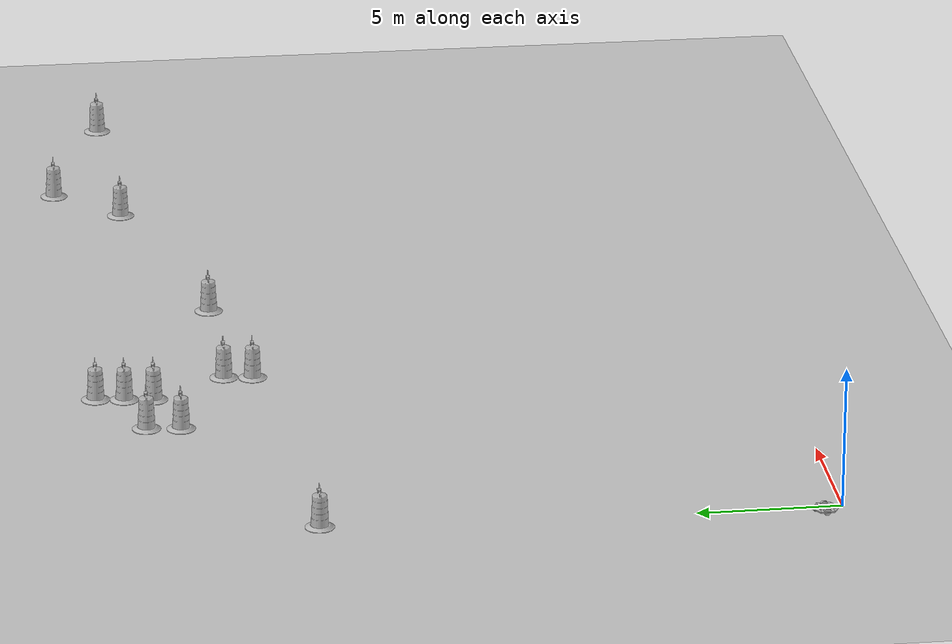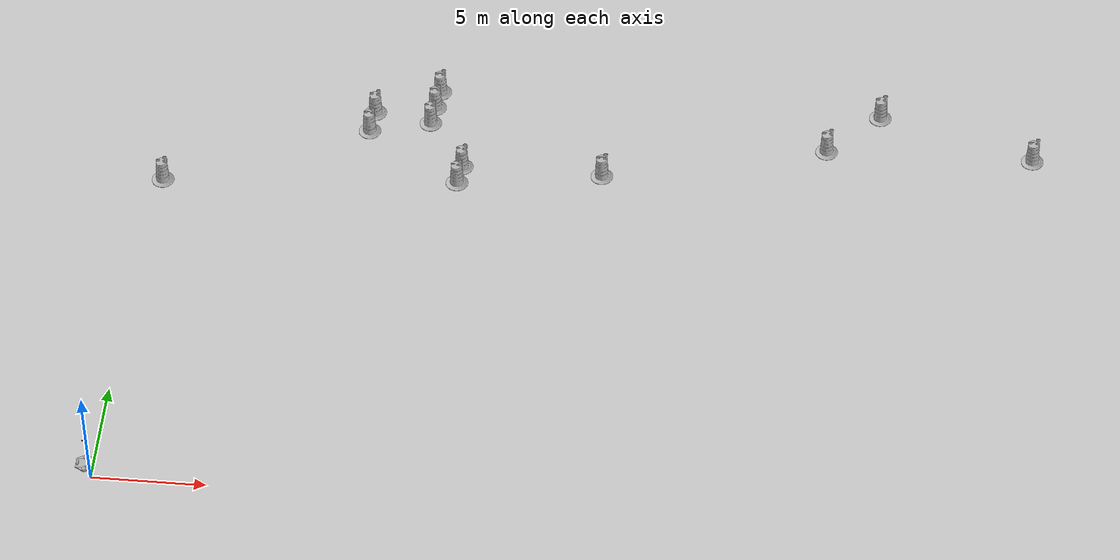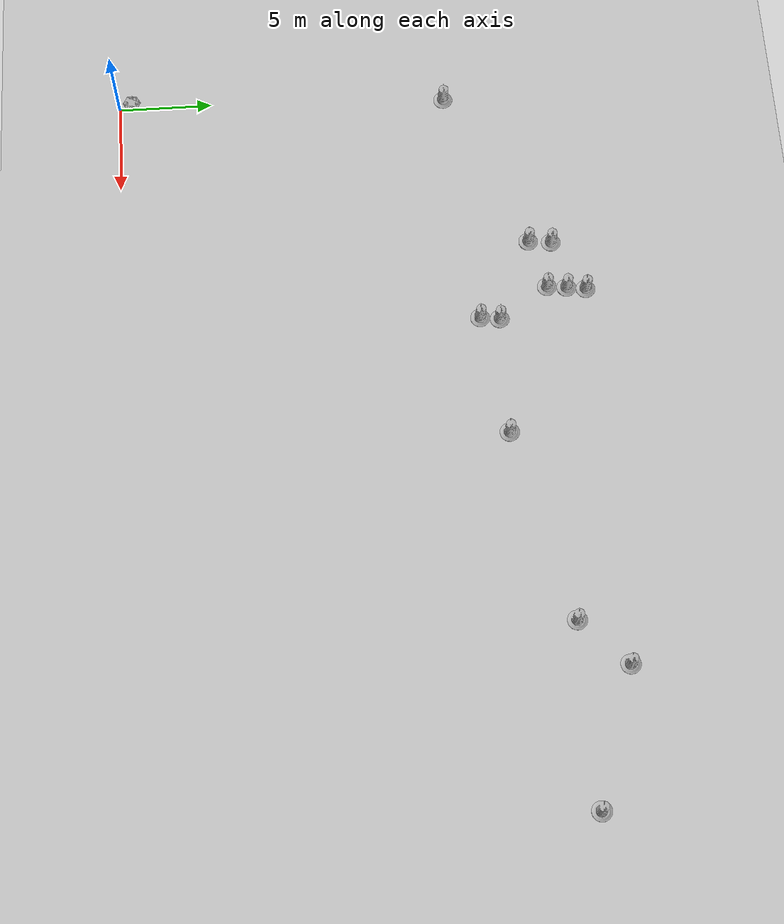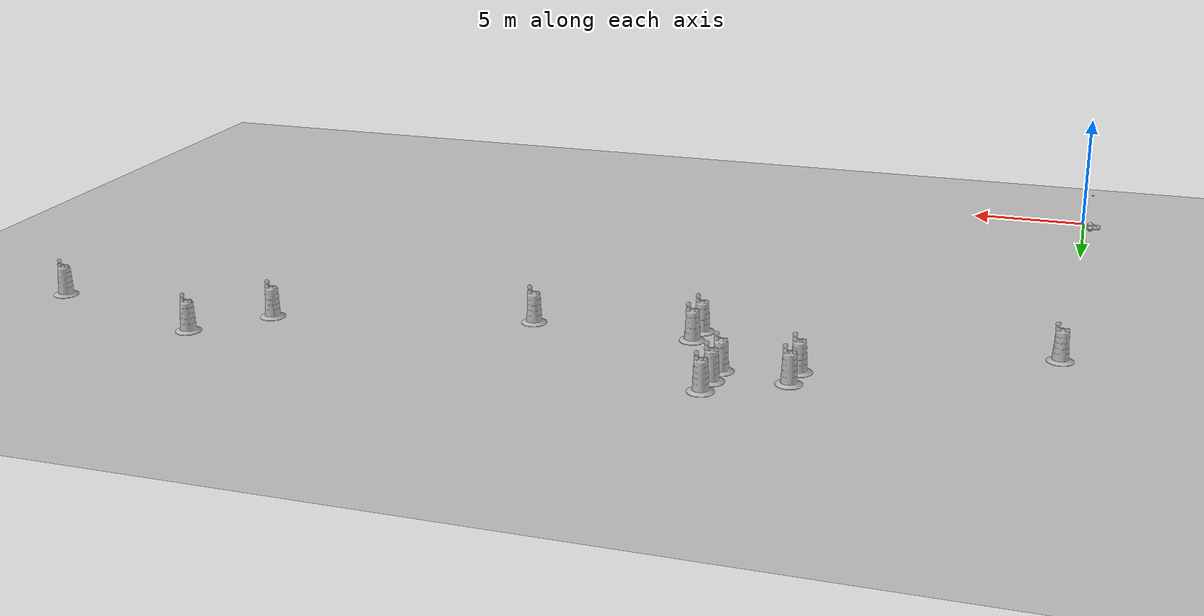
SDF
<sdf version="1.7">
 <world name="default">
  <light name="sun" type="directional">
   <pose>0 0 10 0 -0 0</pose>
   <diffuse>0.8 0.8 0.8 1</diffuse>
   <specular>0.2 0.2 0.2 1</specular>
   <attenuation>
    <range>1000</range>
    <constant>0.9</constant>
    <linear>0.01</linear>
    <quadratic>0.001</quadratic>
   </attenuation>
   <direction>-0.5 0.1 -0.9</direction>
   <spot><inner_angle>0</inner_angle><outer_angle>0</outer_angle><falloff>0</falloff></spot>
  </light>
  <gravity>0 0 -9.8</gravity>
  <magnetic_field>6e-06 2.3e-05 -4.2e-05</magnetic_field>
  <atmosphere type="adiabatic"/>
  <physics type="ode">
   <max_step_size>0.001</max_step_size>
   <real_time_factor>1</real_time_factor>
   <real_time_update_rate>1000</real_time_update_rate>
  </physics>
  <scene><ambient>0.4 0.4 0.4 1</ambient><background>0.7 0.7 0.7 1</background><shadows>1</shadows></scene>
  <spherical_coordinates>
   <surface_model>EARTH_WGS84</surface_model>
   <latitude_deg>0</latitude_deg>
   <longitude_deg>0</longitude_deg>
   <elevation>0</elevation>
   <heading_deg>0</heading_deg>
  </spherical_coordinates>
  <model name="robot">
   <link name="base_link">
    <inertial>
     <pose>0 0 0.071429 0 -0 0</pose>
     <mass>7</mass>
     <inertia><ixx>2.05383</ixx><ixy>0</ixy><ixz>0</ixz><iyy>2.32211</iyy><iyz>0</iyz><izz>2.30782</izz></inertia>
    </inertial>
    <collision name="base_link_fixed_joint_lump__collision_chassis_collision">
     <geometry><box><size>0.4878 0.8382 0.0381</size></box></geometry>
    </collision>
    <collision name="base_link_fixed_joint_lump__link_rotate1_collision_1">
     <geometry><box><size>0.4878 0.8382 0.0381</size></box></geometry>
    </collision>
    <collision name="base_link_fixed_joint_lump__link_rotate2_collision_2">
     <geometry><box><size>0.4878 0.8382 0.0381</size></box></geometry>
    </collision>
    <collision name="base_link_fixed_joint_lump__c_back_collision_3">
     <pose>-0.3175 0 0 1.5708 -0 0</pose>
     <geometry><sphere><radius>0.1263</radius></sphere></geometry>
    </collision>
    <collision name="base_link_fixed_joint_lump__c_front_collision_4">
     <pose>0.3175 0 0 1.5708 -0 0</pose>
     <geometry><sphere><radius>0.1263</radius></sphere></geometry>
    </collision>
    <visual name="base_link_visual"><geometry><box><size>0.4878 0.8382 0.0381</size></box></geometry></visual>
    <visual name="base_link_fixed_joint_lump__link_rotate1_visual_1">
     <pose>0 0 0 0 -0 2.094</pose>
     <geometry><box><size>0.4878 0.8382 0.0381</size></box></geometry>
    </visual>
    <visual name="base_link_fixed_joint_lump__link_rotate2_visual_2">
     <pose>0 0 0 0 0 -2.094</pose>
     <geometry><box><size>0.4878 0.8382 0.0381</size></box></geometry>
    </visual>
    <visual name="base_link_fixed_joint_lump__camera_link_visual_3">
     <pose>0 0 1.5 0 0.55 0</pose>
     <geometry><box><size>0.01 0.1 0.035</size></box></geometry>
     <material>
      <script><name>Gazebo/Red</name><uri>file://media/materials/scripts/gazebo.material</uri></script>
     </material>
    </visual>
    <visual name="base_link_fixed_joint_lump__c_back_visual_4">
     <pose>-0.3175 0 0 1.5708 -0 0</pose>
     <geometry><sphere><radius>0.1263</radius></sphere></geometry>
    </visual>
    <visual name="base_link_fixed_joint_lump__c_front_visual_5">
     <pose>0.3175 0 0 1.5708 -0 0</pose>
     <geometry><sphere><radius>0.1263</radius></sphere></geometry>
    </visual>
    <sensor name="camera" type="depth">
     <visualize>1</visualize>
     <update_rate>10</update_rate>
     <camera>
      <horizontal_fov>2</horizontal_fov>
      <image><format>A8R8G8B8</format><width>1920</width><height>1080</height></image>
      <clip><near>0.05</near><far>8</far></clip>
     </camera>
     <plugin name="camera_controller" filename="libgazebo_ros_camera.so">
      <frame_name>camera_link_optical</frame_name>
      <robotNamespace>/</robotNamespace>
     </plugin>
     <pose>0 0 1.5 0 0.55 0</pose>
    </sensor>
   </link>
   <joint name="joint_left_wheel" type="revolute">
    <pose relative_to="base_link">0 -0.3175 0 0 -0 0</pose>
    <parent>base_link</parent>
    <child>link_left_wheel</child>
    <axis>
     <xyz>0 1 0</xyz>
     <limit><effort>10000</effort><velocity>1000</velocity><lower>-1e+16</lower><upper>1e+16</upper></limit>
     <dynamics><spring_reference>0</spring_reference><spring_stiffness>0</spring_stiffness></dynamics>
    </axis>
   </joint>
   <link name="link_left_wheel">
    <pose relative_to="joint_left_wheel">0 0 0 0 -0 0</pose>
    <inertial>
     <pose>0 0 0 -0 1.5707 1.5707</pose>
     <mass>0.2</mass>
     <inertia>
      <ixx>0.000526667</ixx>
      <ixy>0</ixy>
      <ixz>0</ixz>
      <iyy>0.000526667</iyy>
      <iyz>0</iyz>
      <izz>0.001</izz>
     </inertia>
    </inertial>
    <collision name="link_left_wheel_collision_collision">
     <pose>0 0 0 1.57089 1.57079 -3.14159</pose>
     <geometry><cylinder><length>0.0889</length><radius>0.127</radius></cylinder></geometry>
    </collision>
    <visual name="link_left_wheel_visual_visual">
     <pose>0 0.02 0 1.57089 1.57079 -3.14159</pose>
     <geometry><cylinder><length>0.0889</length><radius>0.127</radius></cylinder></geometry>
    </visual>
   </link>
   <joint name="joint_right_wheel" type="revolute">
    <pose relative_to="base_link">0 0.3175 0 0 -0 0</pose>
    <parent>base_link</parent>
    <child>link_right_wheel</child>
    <axis>
     <xyz>0 1 0</xyz>
     <limit><effort>10000</effort><velocity>1000</velocity><lower>-1e+16</lower><upper>1e+16</upper></limit>
     <dynamics><spring_reference>0</spring_reference><spring_stiffness>0</spring_stiffness></dynamics>
    </axis>
   </joint>
   <link name="link_right_wheel">
    <pose relative_to="joint_right_wheel">0 0 0 0 -0 0</pose>
    <inertial>
     <pose>0 0 0 -0 1.5707 1.5707</pose>
     <mass>0.2</mass>
     <inertia>
      <ixx>0.000526667</ixx>
      <ixy>0</ixy>
      <ixz>0</ixz>
      <iyy>0.000526667</iyy>
      <iyz>0</iyz>
      <izz>0.001</izz>
     </inertia>
    </inertial>
    <collision name="link_right_wheel_collision_collision">
     <pose>0 0 0 1.57089 1.57079 -3.14159</pose>
     <geometry><cylinder><length>0.0889</length><radius>0.127</radius></cylinder></geometry>
    </collision>
    <visual name="link_right_wheel_visual_visual">
     <pose>0 0.02 0 1.57089 1.57079 -3.14159</pose>
     <geometry><cylinder><length>0.0889</length><radius>0.127</radius></cylinder></geometry>
    </visual>
   </link>
   <static>0</static>
   <plugin name="gazebo_ros_control" filename="libgazebo_ros_control.so">
    <robotNamespace>/</robotNamespace>
   </plugin>
   <pose>-0.327922 0.656914 0.126998 0 2.4e-05 1.58565</pose>
  </model>
  <model name="custom_track_1">
   <static>1</static>
   <link name="link">
    <collision name="collision">
     <geometry><plane><normal>0 0 1</normal><size>79 57</size></plane></geometry>
     <surface><friction><ode><mu>100</mu><mu2>50</mu2></ode></friction></surface>
    </collision>
    <visual name="visual">
     <cast_shadows>0</cast_shadows>
     <geometry><plane><normal>0 0 1</normal><size>59 42.5</size></plane></geometry>
     <material>
      <script>
       <uri>model://custom_track_1/materials/scripts</uri>
       <uri>model://custom_track_1/materials/textures/</uri>
       <name>CustomTrack1/Image</name>
      </script>
     </material>
    </visual>
   </link>
   <pose>18.5603 14.7333 0 0 -0 0</pose>
  </model>
  <model name="Construction Barrel">
   <link name="link">
    <inertial>
     <pose>0 0 0.4 0 -0 0</pose>
     <mass>500</mass>
     <inertia><ixx>51.2096</ixx><iyy>51.2096</iyy><izz>25</izz><ixy>0</ixy><ixz>0</ixz><iyz>0</iyz></inertia>
    </inertial>
    <collision name="collision">
     <geometry><mesh><uri>model://construction_barrel/meshes/construction_barrel.dae</uri></mesh></geometry>
    </collision>
    <visual name="visual">
     <geometry><mesh><uri>model://construction_barrel/meshes/construction_barrel.dae</uri></mesh></geometry>
    </visual>
   </link>
   <pose>0.394508 17.7519 1e-06 3e-06 2e-06 -2e-05</pose>
  </model>
  <model name="Construction Barrel_0">
   <link name="link">
    <inertial>
     <pose>0 0 0.4 0 -0 0</pose>
     <mass>500</mass>
     <inertia><ixx>51.2096</ixx><iyy>51.2096</iyy><izz>25</izz><ixy>0</ixy><ixz>0</ixz><iyz>0</iyz></inertia>
    </inertial>
    <collision name="collision">
     <geometry><mesh><uri>model://construction_barrel/meshes/construction_barrel.dae</uri></mesh></geometry>
    </collision>
    <visual name="visual">
     <geometry><mesh><uri>model://construction_barrel/meshes/construction_barrel.dae</uri></mesh></geometry>
    </visual>
   </link>
   <pose>9.53225 22.8463 -0 0 0 -1.8e-05</pose>
  </model>
  <model name="Construction Barrel_1">
   <link name="link">
    <inertial>
     <pose>0 0 0.4 0 -0 0</pose>
     <mass>500</mass>
     <inertia><ixx>51.2096</ixx><iyy>51.2096</iyy><izz>25</izz><ixy>0</ixy><ixz>0</ixz><iyz>0</iyz></inertia>
    </inertial>
    <collision name="collision">
     <geometry><mesh><uri>model://construction_barrel/meshes/construction_barrel.dae</uri></mesh></geometry>
    </collision>
    <visual name="visual">
     <geometry><mesh><uri>model://construction_barrel/meshes/construction_barrel.dae</uri></mesh></geometry>
    </visual>
   </link>
   <pose>9.40519 21.6475 -2e-06 8e-06 -4e-06 -1.7e-05</pose>
  </model>
  <model name="Construction Barrel_2">
   <link name="link">
    <inertial>
     <pose>0 0 0.4 0 -0 0</pose>
     <mass>500</mass>
     <inertia><ixx>51.2096</ixx><iyy>51.2096</iyy><izz>25</izz><ixy>0</ixy><ixz>0</ixz><iyz>0</iyz></inertia>
    </inertial>
    <collision name="collision">
     <geometry><mesh><uri>model://construction_barrel/meshes/construction_barrel.dae</uri></mesh></geometry>
    </collision>
    <visual name="visual">
     <geometry><mesh><uri>model://construction_barrel/meshes/construction_barrel.dae</uri></mesh></geometry>
    </visual>
   </link>
   <pose>12.379 24.4151 -2e-06 4e-06 7e-06 0.005645</pose>
  </model>
  <model name="Construction Barrel_3">
   <link name="link">
    <inertial>
     <pose>0 0 0.4 0 -0 0</pose>
     <mass>500</mass>
     <inertia><ixx>51.2096</ixx><iyy>51.2096</iyy><izz>25</izz><ixy>0</ixy><ixz>0</ixz><iyz>0</iyz></inertia>
    </inertial>
    <collision name="collision">
     <geometry><mesh><uri>model://construction_barrel/meshes/construction_barrel.dae</uri></mesh></geometry>
    </collision>
    <visual name="visual">
     <geometry><mesh><uri>model://construction_barrel/meshes/construction_barrel.dae</uri></mesh></geometry>
    </visual>
   </link>
   <pose>12.2464 23.4117 -6e-06 -7e-06 -1.1e-05 0.010103</pose>
  </model>
  <model name="Construction Barrel_4">
   <link name="link">
    <inertial>
     <pose>0 0 0.4 0 -0 0</pose>
     <mass>500</mass>
     <inertia><ixx>51.2096</ixx><iyy>51.2096</iyy><izz>25</izz><ixy>0</ixy><ixz>0</ixz><iyz>0</iyz></inertia>
    </inertial>
    <collision name="collision">
     <geometry><mesh><uri>model://construction_barrel/meshes/construction_barrel.dae</uri></mesh></geometry>
    </collision>
    <visual name="visual">
     <geometry><mesh><uri>model://construction_barrel/meshes/construction_barrel.dae</uri></mesh></geometry>
    </visual>
   </link>
   <pose>12.1414 22.3863 -0 1e-06 -1e-06 -1.2e-05</pose>
  </model>
  <model name="Construction Barrel_5">
   <link name="link">
    <inertial>
     <pose>0 0 0.4 0 -0 0</pose>
     <mass>500</mass>
     <inertia><ixx>51.2096</ixx><iyy>51.2096</iyy><izz>25</izz><ixy>0</ixy><ixz>0</ixz><iyz>0</iyz></inertia>
    </inertial>
    <collision name="collision">
     <geometry><mesh><uri>model://construction_barrel/meshes/construction_barrel.dae</uri></mesh></geometry>
    </collision>
    <visual name="visual">
     <geometry><mesh><uri>model://construction_barrel/meshes/construction_barrel.dae</uri></mesh></geometry>
    </visual>
   </link>
   <pose>13.7458 18.7287 -1e-06 0 5e-06 -1e-05</pose>
  </model>
  <model name="Construction Barrel_6">
   <link name="link">
    <inertial>
     <pose>0 0 0.4 0 -0 0</pose>
     <mass>500</mass>
     <inertia><ixx>51.2096</ixx><iyy>51.2096</iyy><izz>25</izz><ixy>0</ixy><ixz>0</ixz><iyz>0</iyz></inertia>
    </inertial>
    <collision name="collision">
     <geometry><mesh><uri>model://construction_barrel/meshes/construction_barrel.dae</uri></mesh></geometry>
    </collision>
    <visual name="visual">
     <geometry><mesh><uri>model://construction_barrel/meshes/construction_barrel.dae</uri></mesh></geometry>
    </visual>
   </link>
   <pose>13.871 19.7464 -2e-06 -0 7e-06 -8e-06</pose>
  </model>
  <model name="Construction Barrel_7">
   <link name="link">
    <inertial>
     <pose>0 0 0.4 0 -0 0</pose>
     <mass>500</mass>
     <inertia><ixx>51.2096</ixx><iyy>51.2096</iyy><izz>25</izz><ixy>0</ixy><ixz>0</ixz><iyz>0</iyz></inertia>
    </inertial>
    <collision name="collision">
     <geometry><mesh><uri>model://construction_barrel/meshes/construction_barrel.dae</uri></mesh></geometry>
    </collision>
    <visual name="visual">
     <geometry><mesh><uri>model://construction_barrel/meshes/construction_barrel.dae</uri></mesh></geometry>
    </visual>
   </link>
   <pose>20.2753 19.7139 -1e-06 3e-06 1e-05 -7e-06</pose>
  </model>
  <model name="Construction Barrel_8">
   <link name="link">
    <inertial>
     <pose>0 0 0.4 0 -0 0</pose>
     <mass>500</mass>
     <inertia><ixx>51.2096</ixx><iyy>51.2096</iyy><izz>25</izz><ixy>0</ixy><ixz>0</ixz><iyz>0</iyz></inertia>
    </inertial>
    <collision name="collision">
     <geometry><mesh><uri>model://construction_barrel/meshes/construction_barrel.dae</uri></mesh></geometry>
    </collision>
    <visual name="visual">
     <geometry><mesh><uri>model://construction_barrel/meshes/construction_barrel.dae</uri></mesh></geometry>
    </visual>
   </link>
   <pose>30.396 22.1677 1e-06 2e-06 3e-06 -6e-06</pose>
  </model>
  <model name="Construction Barrel_9">
   <link name="link">
    <inertial>
     <pose>0 0 0.4 0 -0 0</pose>
     <mass>500</mass>
     <inertia><ixx>51.2096</ixx><iyy>51.2096</iyy><izz>25</izz><ixy>0</ixy><ixz>0</ixz><iyz>0</iyz></inertia>
    </inertial>
    <collision name="collision">
     <geometry><mesh><uri>model://construction_barrel/meshes/construction_barrel.dae</uri></mesh></geometry>
    </collision>
    <visual name="visual">
     <geometry><mesh><uri>model://construction_barrel/meshes/construction_barrel.dae</uri></mesh></geometry>
    </visual>
   </link>
   <pose>32.7546 24.5439 0 0 0 -3e-06</pose>
  </model>
  <model name="Construction Barrel_10">
   <link name="link">
    <inertial>
     <pose>0 0 0.4 0 -0 0</pose>
     <mass>500</mass>
     <inertia><ixx>51.2096</ixx><iyy>51.2096</iyy><izz>25</izz><ixy>0</ixy><ixz>0</ixz><iyz>0</iyz></inertia>
    </inertial>
    <collision name="collision">
     <geometry><mesh><uri>model://construction_barrel/meshes/construction_barrel.dae</uri></mesh></geometry>
    </collision>
    <visual name="visual">
     <geometry><mesh><uri>model://construction_barrel/meshes/construction_barrel.dae</uri></mesh></geometry>
    </visual>
   </link>
   <pose>39.7854 22.3797 -1e-06 3e-06 -2e-06 -2e-06</pose>
  </model>
 </world>
</sdf>
